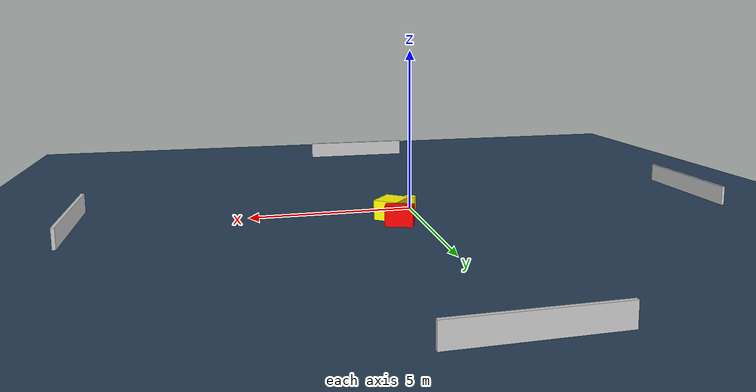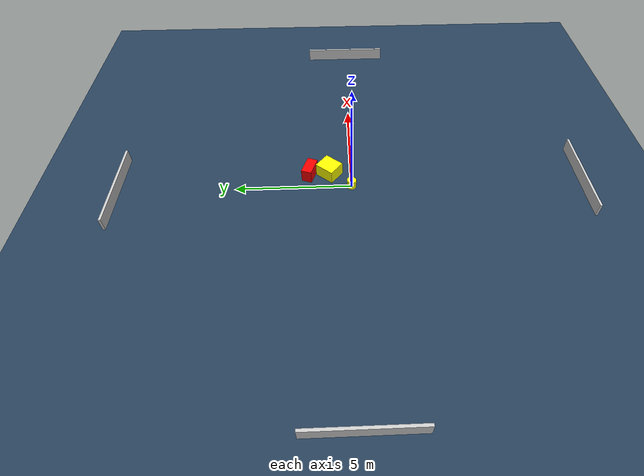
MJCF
<?xml version="1.0" ?>
<mujoco model="generated_environment">
  <option timestep="0.01" integrator="RK4" cone="elliptic"/>
  <default>
    <geom density="1"/>
  </default>
  <asset>
    <texture builtin="gradient" height="3072" name="skybox" rgb1="0.3 0.5 0.7" rgb2="0 0 0" type="skybox" width="512"/>
    <texture builtin="checker" height="300" name="groundplane" rgb1="0.2 0.3 0.4" rgb2="0.1 0.2 0.3" type="2d" width="300"/>
    <material name="groundplane" reflectance="0.2" texrepeat="5 5" texture="groundplane"/>
  </asset>
  <worldbody>
    <light dir="0 0 -1" directional="true" pos="0 0 1.5"/>
    <geom condim="3" friction="0.5 0.005 0.001" material="groundplane" name="floor" pos="0 0 0" size="0 0 0.05" type="plane"/>
    <body name="walls">
      <geom name="wall_1" condim="4" pos="-10.0 0.0 0.3" rgba="0.800000011920929 0.800000011920929 0.800000011920929 1.0" size="0.05 2.0 0.3" type="box"/>
      <geom name="wall_2" condim="4" pos="10.0 0.0 0.3" rgba="0.800000011920929 0.800000011920929 0.800000011920929 1.0" size="0.05 2.0 0.3" type="box"/>
      <geom name="wall_3" condim="4" pos="0.0 -10.0 0.3" rgba="0.800000011920929 0.800000011920929 0.800000011920929 1.0" size="2.0 0.05 0.3" type="box"/>
      <geom name="wall_4" condim="4" pos="0.0 10.0 0.3" rgba="0.800000011920929 0.800000011920929 0.800000011920929 1.0" size="2.0 0.05 0.3" type="box"/>
    </body>
    <body name="robot">
      <joint name="joint_x" type="slide" pos="0 0 0" axis="1 0 0"/>
      <joint name="joint_y" type="slide" pos="0 0 0" axis="0 1 0"/>
      <geom name="robot" type="cylinder" pos="0.0 0.0 0.2" size="0.2 0.2 0.0" mass="5.0" friction="1.0 0.005 0.0001" condim="4" rgba="1.0 1.0 0.0 1.0"/>
    </body>
    <body name="obstacle_1_movable">
      <geom name="obstacle_1_movable" condim="4" pos="0.8010020761768488 0.9565341021494469 0.3" euler="0 0 230.9418479042589" friction="0.0 0.005 0.001" rgba="1.0 1.0 0.0 1.0" size="0.43686330654961936 0.38051290984404407 0.3" type="box" mass="0.1"/>
      <joint type="free"/>
    </body>
    <body name="obstacle_2_static">
      <geom name="obstacle_2_static" condim="4" pos="0.7575803244505772 1.8151948471218498 0.3" euler="0 0 160.82178402813358" friction="0.0 0.005 0.001" rgba="1.0 0.0 0.0 1.0" size="0.41615087078597257 0.221776613609306 0.3" type="box"/>
    </body>
  </worldbody>
  <actuator>
    <motor name="actuator_x" joint="joint_x" gear="1" ctrlrange="-1 1"/>
    <motor name="actuator_y" joint="joint_y" gear="1" ctrlrange="-1 1"/>
  </actuator>
</mujoco>
